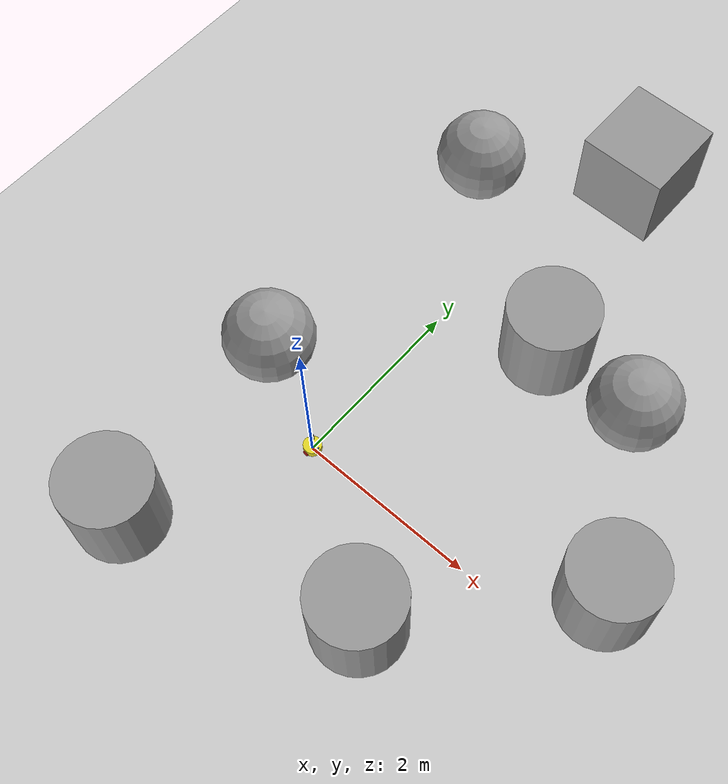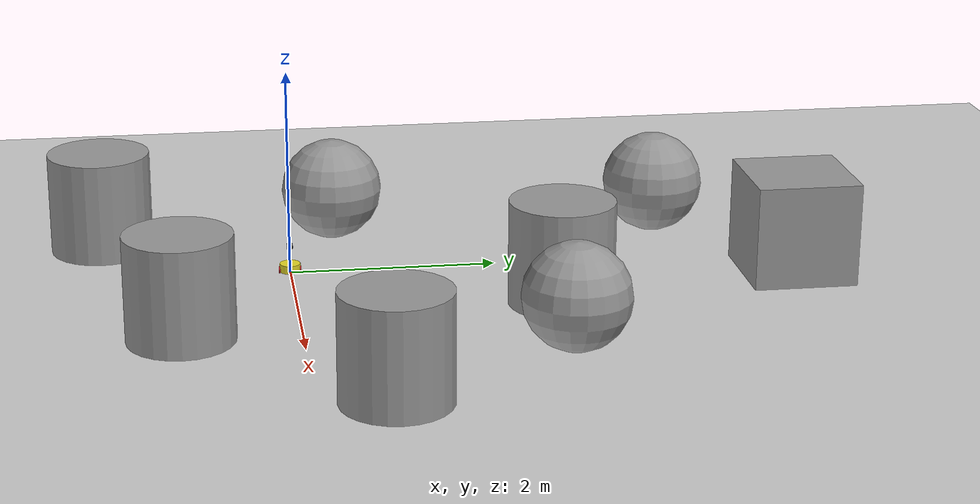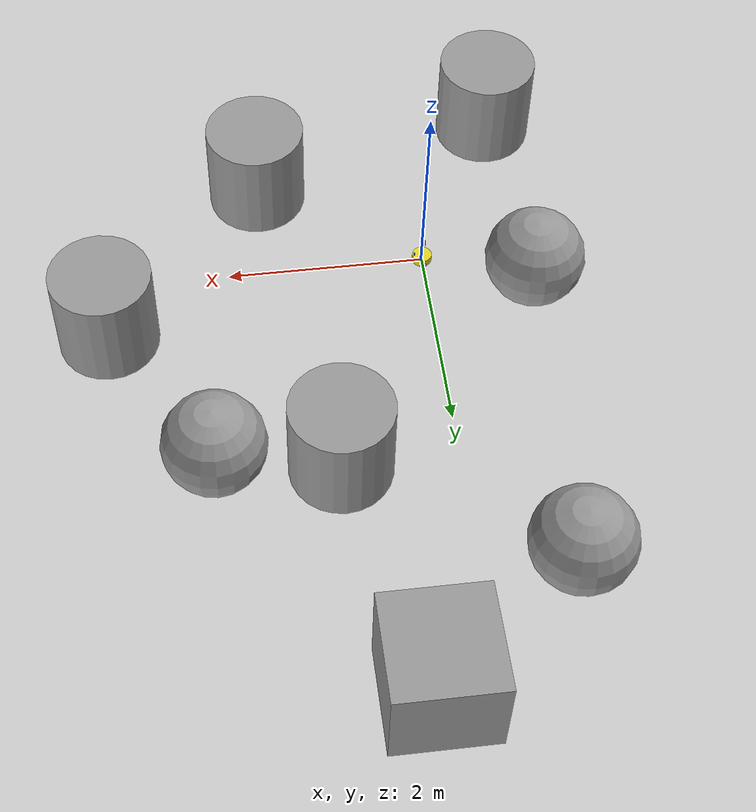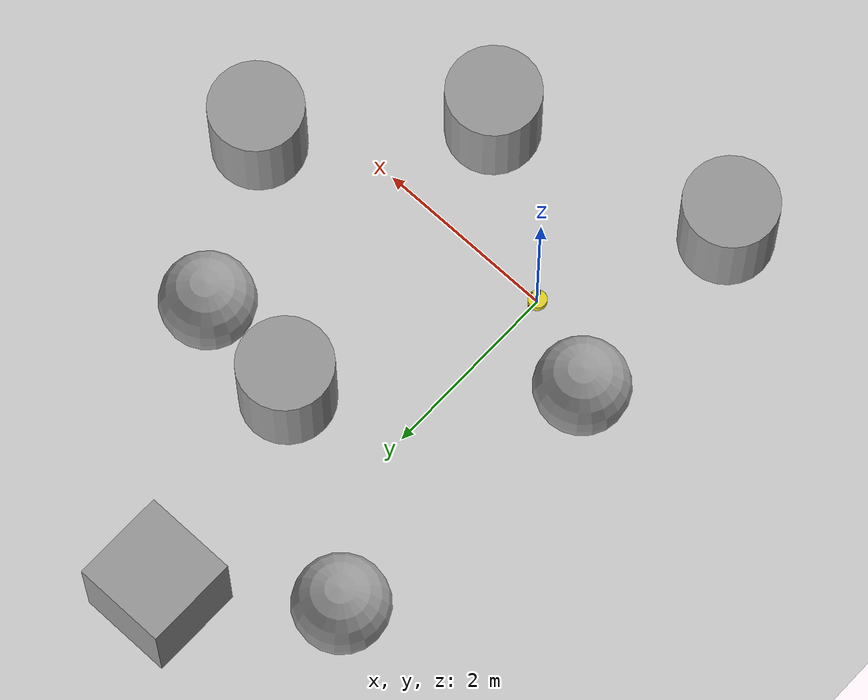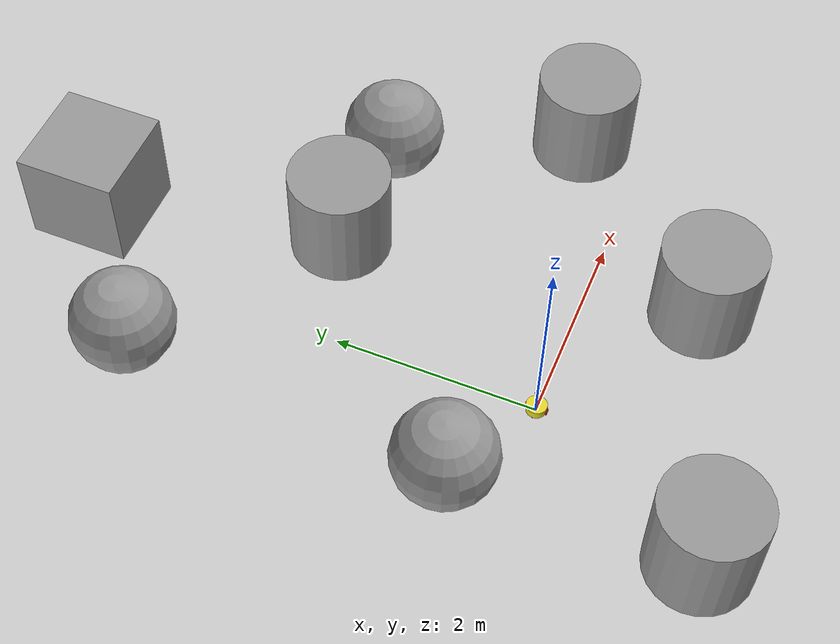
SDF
<sdf version="1.7">
 <world name="default">
  <light name="sun" type="directional">
   <pose>0 0 10 0 -0 0</pose>
   <diffuse>0.8 0.8 0.8 1</diffuse>
   <specular>0.2 0.2 0.2 1</specular>
   <attenuation>
    <range>1000</range>
    <constant>0.9</constant>
    <linear>0.01</linear>
    <quadratic>0.001</quadratic>
   </attenuation>
   <direction>-0.5 0.1 -0.9</direction>
   <spot><inner_angle>0</inner_angle><outer_angle>0</outer_angle><falloff>0</falloff></spot>
  </light>
  <model name="ground_plane">
   <static>1</static>
   <link name="link">
    <collision name="collision">
     <geometry><plane><normal>0 0 1</normal><size>100 100</size></plane></geometry>
     <surface>
      <contact><collide_bitmask>65535</collide_bitmask></contact>
      <friction><ode><mu>100</mu><mu2>50</mu2></ode></friction>
     </surface>
    </collision>
    <visual name="visual">
     <cast_shadows>0</cast_shadows>
     <geometry><plane><normal>0 0 1</normal><size>100 100</size></plane></geometry>
     <material>
      <script><uri>file://media/materials/scripts/gazebo.material</uri><name>Gazebo/Grey</name></script>
     </material>
    </visual>
   </link>
  </model>
  <gravity>0 0 -9.8</gravity>
  <magnetic_field>6e-06 2.3e-05 -4.2e-05</magnetic_field>
  <atmosphere type="adiabatic"/>
  <physics type="ode">
   <max_step_size>0.001</max_step_size>
   <real_time_factor>1</real_time_factor>
   <real_time_update_rate>1000</real_time_update_rate>
  </physics>
  <scene><ambient>0.4 0.4 0.4 1</ambient><background>0.7 0.7 0.7 1</background><shadows>1</shadows></scene>
  <spherical_coordinates>
   <surface_model>EARTH_WGS84</surface_model>
   <latitude_deg>0</latitude_deg>
   <longitude_deg>0</longitude_deg>
   <elevation>0</elevation>
   <heading_deg>0</heading_deg>
  </spherical_coordinates>
  <model name="mycar">
   <link name="base_footprint">
    <inertial>
     <pose>0.00127 0 0.093611 0 -0 0</pose>
     <mass>0.63</mass>
     <inertia>
      <ixx>0.00557395</ixx>
      <ixy>0</ixy>
      <ixz>-1.11111e-05</ixz>
      <iyy>0.00563694</iyy>
      <iyz>0</iyz>
      <izz>0.00261003</izz>
     </inertia>
    </inertial>
    <collision name="base_footprint_fixed_joint_lump__base_link_collision">
     <pose>0 0 0.055 0 -0 0</pose>
     <geometry><cylinder><length>0.08</length><radius>0.1</radius></cylinder></geometry>
    </collision>
    <collision name="base_footprint_fixed_joint_lump__camera_collision_1">
     <pose>0.08 0 0.1075 0 -0 0</pose>
     <geometry><box><size>0.01 0.025 0.025</size></box></geometry>
    </collision>
    <collision name="base_footprint_fixed_joint_lump__support_collision_2">
     <pose>0 0 0.17 0 -0 0</pose>
     <geometry><cylinder><length>0.15</length><radius>0.01</radius></cylinder></geometry>
    </collision>
    <collision name="base_footprint_fixed_joint_lump__laser_collision_3">
     <pose>0 0 0.27 0 -0 0</pose>
     <geometry><cylinder><length>0.05</length><radius>0.03</radius></cylinder></geometry>
    </collision>
    <visual name="base_footprint_visual"><geometry><sphere><radius>0.001</radius></sphere></geometry></visual>
    <visual name="base_footprint_fixed_joint_lump__base_link_visual_1">
     <pose>0 0 0.055 0 -0 0</pose>
     <geometry><cylinder><length>0.08</length><radius>0.1</radius></cylinder></geometry>
     <material>
      <script><name>Gazebo/Yellow</name><uri>file://media/materials/scripts/gazebo.material</uri></script>
     </material>
    </visual>
    <visual name="base_footprint_fixed_joint_lump__camera_visual_2">
     <pose>0.08 0 0.1075 0 -0 0</pose>
     <geometry><box><size>0.01 0.025 0.025</size></box></geometry>
     <material>
      <script><name>Gazebo/Blue</name><uri>file://media/materials/scripts/gazebo.material</uri></script>
     </material>
    </visual>
    <visual name="base_footprint_fixed_joint_lump__support_visual_3">
     <pose>0 0 0.17 0 -0 0</pose>
     <geometry><cylinder><length>0.15</length><radius>0.01</radius></cylinder></geometry>
     <material>
      <script><name>Gazebo/White</name><uri>file://media/materials/scripts/gazebo.material</uri></script>
     </material>
    </visual>
    <visual name="base_footprint_fixed_joint_lump__laser_visual_4">
     <pose>0 0 0.27 0 -0 0</pose>
     <geometry><cylinder><length>0.05</length><radius>0.03</radius></cylinder></geometry>
     <material>
      <script><name>Gazebo/Black</name><uri>file://media/materials/scripts/gazebo.material</uri></script>
     </material>
    </visual>
   </link>
   <joint name="back_wheel2base_link" type="revolute">
    <pose relative_to="base_footprint">-0.0925 0 0.0075 0 -0 0</pose>
    <parent>base_footprint</parent>
    <child>back_wheel</child>
    <axis>
     <xyz>1 1 1</xyz>
     <limit><lower>-1e+16</lower><upper>1e+16</upper></limit>
     <dynamics><spring_reference>0</spring_reference><spring_stiffness>0</spring_stiffness></dynamics>
    </axis>
   </joint>
   <link name="back_wheel">
    <pose relative_to="back_wheel2base_link">0 0 0 0 -0 0</pose>
    <inertial>
     <mass>0.03</mass>
     <inertia>
      <ixx>6.75e-07</ixx>
      <ixy>0</ixy>
      <ixz>0</ixz>
      <iyy>6.75e-07</iyy>
      <iyz>0</iyz>
      <izz>6.75e-07</izz>
     </inertia>
    </inertial>
    <collision name="back_wheel_collision">
     <geometry><sphere><radius>0.0075</radius></sphere></geometry>
    </collision>
    <visual name="back_wheel_visual">
     <geometry><sphere><radius>0.0075</radius></sphere></geometry>
     <material>
      <script><name>Gazebo/Red</name><uri>file://media/materials/scripts/gazebo.material</uri></script>
     </material>
    </visual>
   </link>
   <joint name="front_wheel2base_link" type="revolute">
    <pose relative_to="base_footprint">0.0925 0 0.0075 0 -0 0</pose>
    <parent>base_footprint</parent>
    <child>front_wheel</child>
    <axis>
     <xyz>1 1 1</xyz>
     <limit><lower>-1e+16</lower><upper>1e+16</upper></limit>
     <dynamics><spring_reference>0</spring_reference><spring_stiffness>0</spring_stiffness></dynamics>
    </axis>
   </joint>
   <link name="front_wheel">
    <pose relative_to="front_wheel2base_link">0 0 0 0 -0 0</pose>
    <inertial>
     <mass>0.03</mass>
     <inertia>
      <ixx>6.75e-07</ixx>
      <ixy>0</ixy>
      <ixz>0</ixz>
      <iyy>6.75e-07</iyy>
      <iyz>0</iyz>
      <izz>6.75e-07</izz>
     </inertia>
    </inertial>
    <collision name="front_wheel_collision">
     <geometry><sphere><radius>0.0075</radius></sphere></geometry>
    </collision>
    <visual name="front_wheel_visual">
     <geometry><sphere><radius>0.0075</radius></sphere></geometry>
     <material>
      <script><name>Gazebo/Red</name><uri>file://media/materials/scripts/gazebo.material</uri></script>
     </material>
    </visual>
   </link>
   <joint name="left_wheel2base_link" type="revolute">
    <pose relative_to="base_footprint">0 0.1 0.0325 0 -0 0</pose>
    <parent>base_footprint</parent>
    <child>left_wheel</child>
    <axis>
     <xyz>0 1 0</xyz>
     <limit><lower>-1e+16</lower><upper>1e+16</upper></limit>
     <dynamics><spring_reference>0</spring_reference><spring_stiffness>0</spring_stiffness></dynamics>
    </axis>
   </joint>
   <link name="left_wheel">
    <pose relative_to="left_wheel2base_link">0 0 0 0 -0 0</pose>
    <inertial>
     <mass>0.05</mass>
     <inertia>
      <ixx>1.41406e-05</ixx>
      <ixy>0</ixy>
      <ixz>0</ixz>
      <iyy>1.41406e-05</iyy>
      <iyz>0</iyz>
      <izz>2.64063e-05</izz>
     </inertia>
    </inertial>
    <collision name="left_wheel_collision">
     <pose>0 0 0 1.5708 -0 0</pose>
     <geometry><cylinder><length>0.015</length><radius>0.0325</radius></cylinder></geometry>
    </collision>
    <visual name="left_wheel_visual">
     <pose>0 0 0 1.5708 -0 0</pose>
     <geometry><cylinder><length>0.015</length><radius>0.0325</radius></cylinder></geometry>
     <material>
      <script><name>Gazebo/Red</name><uri>file://media/materials/scripts/gazebo.material</uri></script>
     </material>
    </visual>
   </link>
   <joint name="right_wheel2base_link" type="revolute">
    <pose relative_to="base_footprint">0 -0.1 0.0325 0 -0 0</pose>
    <parent>base_footprint</parent>
    <child>right_wheel</child>
    <axis>
     <xyz>0 1 0</xyz>
     <limit><lower>-1e+16</lower><upper>1e+16</upper></limit>
     <dynamics><spring_reference>0</spring_reference><spring_stiffness>0</spring_stiffness></dynamics>
    </axis>
   </joint>
   <link name="right_wheel">
    <pose relative_to="right_wheel2base_link">0 0 0 0 -0 0</pose>
    <inertial>
     <mass>0.05</mass>
     <inertia>
      <ixx>1.41406e-05</ixx>
      <ixy>0</ixy>
      <ixz>0</ixz>
      <iyy>1.41406e-05</iyy>
      <iyz>0</iyz>
      <izz>2.64063e-05</izz>
     </inertia>
    </inertial>
    <collision name="right_wheel_collision">
     <pose>0 0 0 1.5708 -0 0</pose>
     <geometry><cylinder><length>0.015</length><radius>0.0325</radius></cylinder></geometry>
    </collision>
    <visual name="right_wheel_visual">
     <pose>0 0 0 1.5708 -0 0</pose>
     <geometry><cylinder><length>0.015</length><radius>0.0325</radius></cylinder></geometry>
     <material>
      <script><name>Gazebo/Red</name><uri>file://media/materials/scripts/gazebo.material</uri></script>
     </material>
    </visual>
   </link>
   <pose>0.000909 -0.000367 0 0 0 -0.008286</pose>
  </model>
  <model name="unit_cylinder">
   <pose>1.13543 2.4548 0.499998 3e-06 -4e-06 0</pose>
   <link name="link">
    <inertial>
     <mass>1</mass>
     <inertia><ixx>0.145833</ixx><ixy>0</ixy><ixz>0</ixz><iyy>0.145833</iyy><iyz>0</iyz><izz>0.125</izz></inertia>
    </inertial>
    <collision name="collision">
     <geometry><cylinder><radius>0.5</radius><length>1</length></cylinder></geometry>
    </collision>
    <visual name="visual">
     <geometry><cylinder><radius>0.5</radius><length>1</length></cylinder></geometry>
     <material>
      <script><name>Gazebo/Grey</name><uri>file://media/materials/scripts/gazebo.material</uri></script>
     </material>
    </visual>
   </link>
  </model>
  <light name="user_point_light_0" type="point">
   <pose>-3.74299 -4.71686 1 0 -0 0</pose>
   <diffuse>0.5 0.5 0.5 1</diffuse>
   <specular>0.1 0.1 0.1 1</specular>
   <attenuation>
    <range>20</range>
    <constant>0.5</constant>
    <linear>0.01</linear>
    <quadratic>0.001</quadratic>
   </attenuation>
   <cast_shadows>0</cast_shadows>
   <direction>0 0 -1</direction>
  </light>
  <model name="unit_sphere">
   <pose>-0.849558 3.76213 0.5 0 -0 0</pose>
   <link name="link">
    <inertial>
     <mass>1</mass>
     <inertia><ixx>0.1</ixx><ixy>0</ixy><ixz>0</ixz><iyy>0.1</iyy><iyz>0</iyz><izz>0.1</izz></inertia>
    </inertial>
    <collision name="collision"><geometry><sphere><radius>0.5</radius></sphere></geometry></collision>
    <visual name="visual">
     <geometry><sphere><radius>0.5</radius></sphere></geometry>
     <material>
      <script><name>Gazebo/Grey</name><uri>file://media/materials/scripts/gazebo.material</uri></script>
     </material>
    </visual>
   </link>
  </model>
  <model name="unit_cylinder_0">
   <pose>1.6125 -1.08654 0.499998 3e-06 -4e-06 0</pose>
   <link name="link">
    <inertial>
     <mass>1</mass>
     <inertia><ixx>0.145833</ixx><ixy>0</ixy><ixz>0</ixz><iyy>0.145833</iyy><iyz>0</iyz><izz>0.125</izz></inertia>
    </inertial>
    <collision name="collision">
     <geometry><cylinder><radius>0.5</radius><length>1</length></cylinder></geometry>
    </collision>
    <visual name="visual">
     <geometry><cylinder><radius>0.5</radius><length>1</length></cylinder></geometry>
     <material>
      <script><name>Gazebo/Grey</name><uri>file://media/materials/scripts/gazebo.material</uri></script>
     </material>
    </visual>
   </link>
  </model>
  <model name="unit_cylinder_1">
   <pose>3.24744 0.664012 0.499992 -3e-06 -4e-06 -0</pose>
   <link name="link">
    <inertial>
     <mass>1</mass>
     <inertia><ixx>0.145833</ixx><ixy>0</ixy><ixz>0</ixz><iyy>0.145833</iyy><iyz>0</iyz><izz>0.125</izz></inertia>
    </inertial>
    <collision name="collision">
     <geometry><cylinder><radius>0.5</radius><length>1</length></cylinder></geometry>
    </collision>
    <visual name="visual">
     <geometry><cylinder><radius>0.5</radius><length>1</length></cylinder></geometry>
     <material>
      <script><name>Gazebo/Grey</name><uri>file://media/materials/scripts/gazebo.material</uri></script>
     </material>
    </visual>
   </link>
  </model>
  <model name="unit_sphere_0">
   <pose>2.30045 2.37198 0.5 0 -0 0</pose>
   <link name="link">
    <inertial>
     <mass>1</mass>
     <inertia><ixx>0.1</ixx><ixy>0</ixy><ixz>0</ixz><iyy>0.1</iyy><iyz>0</iyz><izz>0.1</izz></inertia>
    </inertial>
    <collision name="collision"><geometry><sphere><radius>0.5</radius></sphere></geometry></collision>
    <visual name="visual">
     <geometry><sphere><radius>0.5</radius></sphere></geometry>
     <material>
      <script><name>Gazebo/Grey</name><uri>file://media/materials/scripts/gazebo.material</uri></script>
     </material>
    </visual>
   </link>
  </model>
  <model name="unit_box">
   <pose>0.593532 4.83968 0.499995 0 1e-05 0</pose>
   <link name="link">
    <inertial>
     <mass>1</mass>
     <inertia>
      <ixx>0.166667</ixx>
      <ixy>0</ixy>
      <ixz>0</ixz>
      <iyy>0.166667</iyy>
      <iyz>0</iyz>
      <izz>0.166667</izz>
     </inertia>
    </inertial>
    <collision name="collision"><geometry><box><size>1 1 1</size></box></geometry></collision>
    <visual name="visual">
     <geometry><box><size>1 1 1</size></box></geometry>
     <material>
      <script><name>Gazebo/Grey</name><uri>file://media/materials/scripts/gazebo.material</uri></script>
     </material>
    </visual>
   </link>
  </model>
  <model name="unit_sphere_1">
   <pose>-1.0471 0.499751 0.5 0 -0 0</pose>
   <link name="link">
    <inertial>
     <mass>1</mass>
     <inertia><ixx>0.1</ixx><ixy>0</ixy><ixz>0</ixz><iyy>0.1</iyy><iyz>0</iyz><izz>0.1</izz></inertia>
    </inertial>
    <collision name="collision"><geometry><sphere><radius>0.5</radius></sphere></geometry></collision>
    <visual name="visual">
     <geometry><sphere><radius>0.5</radius></sphere></geometry>
     <material>
      <script><name>Gazebo/Grey</name><uri>file://media/materials/scripts/gazebo.material</uri></script>
     </material>
    </visual>
   </link>
  </model>
  <model name="unit_cylinder_2">
   <pose>-0.937418 -1.80997 0.499997 3e-06 4e-06 -0</pose>
   <link name="link">
    <inertial>
     <mass>1</mass>
     <inertia><ixx>0.145833</ixx><ixy>0</ixy><ixz>0</ixz><iyy>0.145833</iyy><iyz>0</iyz><izz>0.125</izz></inertia>
    </inertial>
    <collision name="collision">
     <geometry><cylinder><radius>0.5</radius><length>1</length></cylinder></geometry>
    </collision>
    <visual name="visual">
     <geometry><cylinder><radius>0.5</radius><length>1</length></cylinder></geometry>
     <material>
      <script><name>Gazebo/Grey</name><uri>file://media/materials/scripts/gazebo.material</uri></script>
     </material>
    </visual>
   </link>
  </model>
 </world>
</sdf>
